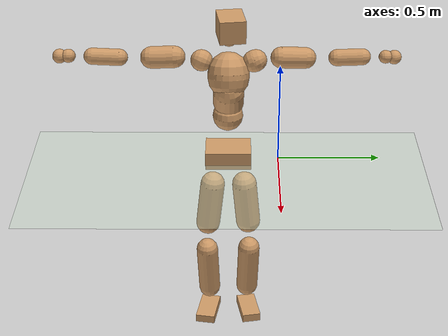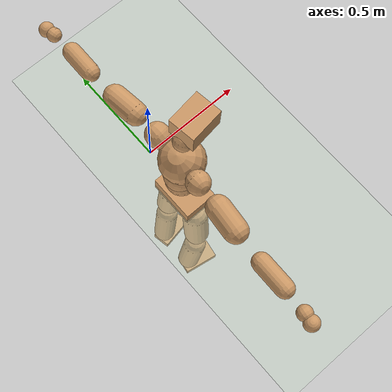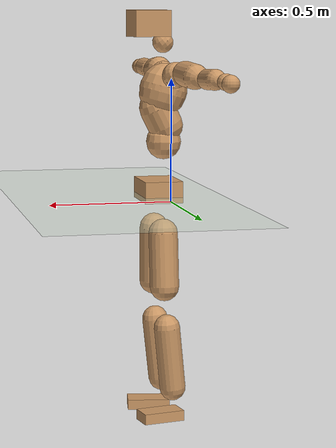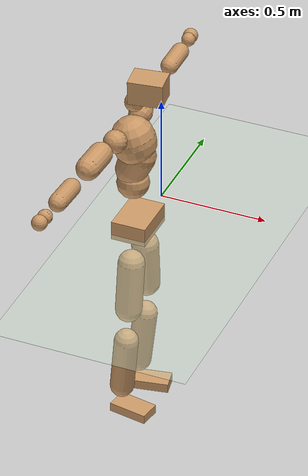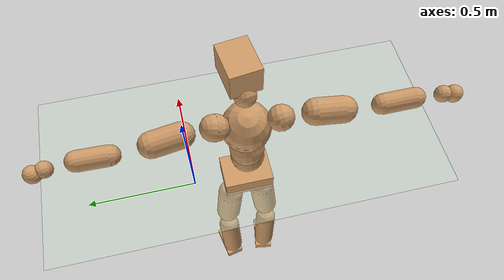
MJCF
<mujoco model="humanoid">
  <compiler coordinate="local" angle="radian"/>
  <default>
    <joint damping="0.0" armature="0.01" stiffness="0.0" limited="true"/>
    <geom conaffinity="1" condim="3" contype="7" margin="0.001" rgba="0.8 0.6 .4 1"/>
  </default>
  <asset>
    <texture type="skybox" builtin="gradient" rgb1=".4 .5 .6" rgb2="0 0 0" width="100" height="100"/>
    <texture builtin="flat" height="1278" mark="cross" markrgb="1 1 1" name="texgeom" random="0.01" rgb1="0.8 0.6 0.4" rgb2="0.8 0.6 0.4" type="cube" width="127"/>
    <texture builtin="checker" height="100" name="texplane" rgb1="0 0 0" rgb2="0.8 0.8 0.8" type="2d" width="100"/>
    <material name="MatPlane" reflectance="0.5" shininess="1" specular="1" texrepeat="60 60" texture="texplane"/>
    <material name="geom" texture="texgeom" texuniform="true"/>
  </asset>
  <worldbody>
    <light cutoff="100" diffuse="1 1 1" dir="-0 0 -1.3" directional="true" exponent="1" pos="0 0 1.3" specular=".1 .1 .1"/>
    <geom conaffinity="1" condim="3" name="floor" pos="0 0 0" rgba="0.8 0.9 0.8 1" size="100 100 .2" type="plane" material="MatPlane"/>
    <body name="Pelvis" pos="0.0011 -0.2469 0.0328">
      <freejoint name="Pelvis"/>
      <geom type="box" contype="1" conaffinity="1" density="5359.374946" pos="-0.0064 0.0000 -0.0133" size="0.0804 0.1121 0.0449" quat="1.0000 0.0000 0.0000 -0.0000" name="Pelvis"/>
      <body name="L_Hip" pos="-0.008 0.073 -0.0976">
        <joint name="L_Hip_x" type="hinge" pos="0 0 0" axis="1 0 0" stiffness="1600" damping="160" armature="0.02" range="-180.0000 180.0000"/>
        <joint name="L_Hip_y" type="hinge" pos="0 0 0" axis="0 1 0" stiffness="1600" damping="160" armature="0.02" range="-180.0000 180.0000"/>
        <joint name="L_Hip_z" type="hinge" pos="0 0 0" axis="0 0 1" stiffness="1600" damping="160" armature="0.02" range="-180.0000 180.0000"/>
        <geom type="capsule" contype="1" conaffinity="1" density="2040.816327" size="0.0618" fromto="-0.0008 0.0086 -0.0914 -0.0026 0.0298 -0.3160" name="L_Hip"/>
        <body name="L_Knee" pos="-0.0034 0.0385 -0.4075">
          <joint name="L_Knee_x" type="hinge" pos="0 0 0" axis="1 0 0" stiffness="1600" damping="160" armature="0.02" range="-180.0000 180.0000"/>
          <joint name="L_Knee_y" type="hinge" pos="0 0 0" axis="0 1 0" stiffness="1600" damping="160" armature="0.02" range="-180.0000 180.0000"/>
          <joint name="L_Knee_z" type="hinge" pos="0 0 0" axis="0 0 1" stiffness="1600" damping="160" armature="0.02" range="-180.0000 180.0000"/>
          <geom type="capsule" contype="1" conaffinity="1" density="1234.567901" size="0.0556" fromto="-0.0089 -0.0027 -0.0850 -0.0368 -0.0110 -0.3498" name="L_Knee"/>
          <body name="L_Ankle" pos="-0.0457 -0.0137 -0.4348">
            <joint name="L_Ankle_x" type="hinge" pos="0 0 0" axis="1 0 0" stiffness="1600" damping="160" armature="0.02" range="-180.0000 180.0000"/>
            <joint name="L_Ankle_y" type="hinge" pos="0 0 0" axis="0 1 0" stiffness="1600" damping="160" armature="0.02" range="-180.0000 180.0000"/>
            <joint name="L_Ankle_z" type="hinge" pos="0 0 0" axis="0 0 1" stiffness="1600" damping="160" armature="0.02" range="-180.0000 180.0000"/>
            <geom type="box" contype="1" conaffinity="1" density="999.999994" pos="0.0640 0.0118 -0.0311" size="0.0896 0.0475 0.0222" quat="0.9958 0.0000 0.0000 0.0910" name="L_Ankle"/>
            <body name="L_Toe" pos="0.128 0.0236 -0.0621">
              <joint name="L_Toe_x" type="hinge" pos="0 0 0" axis="1 0 0" stiffness="1000" damping="100" armature="0.02" range="-180.0000 180.0000"/>
              <joint name="L_Toe_y" type="hinge" pos="0 0 0" axis="0 1 0" stiffness="1000" damping="100" armature="0.02" range="-180.0000 180.0000"/>
              <joint name="L_Toe_z" type="hinge" pos="0 0 0" axis="0 0 1" stiffness="1000" damping="100" armature="0.02" range="-180.0000 180.0000"/>
              <geom type="box" contype="1" conaffinity="1" density="8800089.285752" pos="0.0000 0.0000 0.0316" size="0.0009 0.0024 0.0011" quat="0.9953 0.0000 0.0000 0.0970" name="L_Toe"/>
            </body>
          </body>
        </body>
      </body>
      <body name="R_Hip" pos="-0.0043 -0.0689 -0.0963">
        <joint name="R_Hip_x" type="hinge" pos="0 0 0" axis="1 0 0" stiffness="1600" damping="160" armature="0.02" range="-180.0000 180.0000"/>
        <joint name="R_Hip_y" type="hinge" pos="0 0 0" axis="0 1 0" stiffness="1600" damping="160" armature="0.02" range="-180.0000 180.0000"/>
        <joint name="R_Hip_z" type="hinge" pos="0 0 0" axis="0 0 1" stiffness="1600" damping="160" armature="0.02" range="-180.0000 180.0000"/>
        <geom type="capsule" contype="1" conaffinity="1" density="2040.816327" size="0.0609" fromto="-0.0013 -0.0097 -0.0903 -0.0049 -0.0350 -0.3268" name="R_Hip"/>
        <body name="R_Knee" pos="-0.0062 -0.0447 -0.4172">
          <joint name="R_Knee_x" type="hinge" pos="0 0 0" axis="1 0 0" stiffness="1600" damping="160" armature="0.02" range="-180.0000 180.0000"/>
          <joint name="R_Knee_y" type="hinge" pos="0 0 0" axis="0 1 0" stiffness="1600" damping="160" armature="0.02" range="-180.0000 180.0000"/>
          <joint name="R_Knee_z" type="hinge" pos="0 0 0" axis="0 0 1" stiffness="1600" damping="160" armature="0.02" range="-180.0000 180.0000"/>
          <geom type="capsule" contype="1" conaffinity="1" density="1234.567901" size="0.056" fromto="-0.0087 0.0033 -0.0855 -0.0355 0.0137 -0.3500" name="R_Knee"/>
          <body name="R_Ankle" pos="-0.0442 0.017 -0.4355">
            <joint name="R_Ankle_x" type="hinge" pos="0 0 0" axis="1 0 0" stiffness="1600" damping="160" armature="0.02" range="-180.0000 180.0000"/>
            <joint name="R_Ankle_y" type="hinge" pos="0 0 0" axis="0 1 0" stiffness="1600" damping="160" armature="0.02" range="-180.0000 180.0000"/>
            <joint name="R_Ankle_z" type="hinge" pos="0 0 0" axis="0 0 1" stiffness="1600" damping="160" armature="0.02" range="-180.0000 180.0000"/>
            <geom type="box" contype="1" conaffinity="1" density="1000.000014" pos="0.0658 -0.0112 -0.0257" size="0.0915 0.0496 0.0215" quat="0.9964 0.0000 0.0000 -0.0844" name="R_Ankle"/>
            <body name="R_Toe" pos="0.1317 -0.0225 -0.0514">
              <joint name="R_Toe_x" type="hinge" pos="0 0 0" axis="1 0 0" stiffness="1000" damping="100" armature="0.02" range="-180.0000 180.0000"/>
              <joint name="R_Toe_y" type="hinge" pos="0 0 0" axis="0 1 0" stiffness="1000" damping="100" armature="0.02" range="-180.0000 180.0000"/>
              <joint name="R_Toe_z" type="hinge" pos="0 0 0" axis="0 0 1" stiffness="1000" damping="100" armature="0.02" range="-180.0000 180.0000"/>
              <geom type="box" contype="1" conaffinity="1" density="8518494.071621" pos="0.0000 0.0000 0.0296" size="0.0009 0.0024 0.0013" quat="0.9971 0.0000 0.0000 -0.0759" name="R_Toe"/>
            </body>
          </body>
        </body>
      </body>
      <body name="Torso" pos="-0.0263 -0.0041 0.1143">
        <joint name="Torso_x" type="hinge" pos="0 0 0" axis="1 0 0" stiffness="2000" damping="200" armature="0.02" range="-180.0000 180.0000"/>
        <joint name="Torso_y" type="hinge" pos="0 0 0" axis="0 1 0" stiffness="2000" damping="200" armature="0.02" range="-180.0000 180.0000"/>
        <joint name="Torso_z" type="hinge" pos="0 0 0" axis="0 0 1" stiffness="2000" damping="200" armature="0.02" range="-180.0000 180.0000"/>
        <geom type="capsule" contype="1" conaffinity="1" density="2040.816327" size="0.0743" fromto="-0.0023 0.0025 0.0759 -0.0023 0.0025 0.0779" name="Torso"/>
        <body name="Spine" pos="-0.0046 0.005 0.1538">
          <joint name="Spine_x" type="hinge" pos="0 0 0" axis="1 0 0" stiffness="2000" damping="200" armature="0.02" range="-180.0000 180.0000"/>
          <joint name="Spine_y" type="hinge" pos="0 0 0" axis="0 1 0" stiffness="2000" damping="200" armature="0.02" range="-180.0000 180.0000"/>
          <joint name="Spine_z" type="hinge" pos="0 0 0" axis="0 0 1" stiffness="2000" damping="200" armature="0.02" range="-180.0000 180.0000"/>
          <geom type="capsule" contype="1" conaffinity="1" density="2040.816327" size="0.0745" fromto="0.0331 0.0014 0.0667 -0.0046 -0.0002 -0.0093" name="Spine"/>
          <body name="Chest" pos="0.0285 0.0012 0.0574">
            <joint name="Chest_x" type="hinge" pos="0 0 0" axis="1 0 0" stiffness="2000" damping="200" armature="0.02" range="-180.0000 180.0000"/>
            <joint name="Chest_y" type="hinge" pos="0 0 0" axis="0 1 0" stiffness="2000" damping="200" armature="0.02" range="-180.0000 180.0000"/>
            <joint name="Chest_z" type="hinge" pos="0 0 0" axis="0 0 1" stiffness="2000" damping="200" armature="0.02" range="-180.0000 180.0000"/>
            <geom type="capsule" contype="1" conaffinity="1" density="2040.816327" size="0.1003" fromto="-0.0274 -0.0006 0.0965 -0.0203 -0.0005 0.0716" name="Chest"/>
            <body name="Neck" pos="-0.051 -0.0014 0.2436">
              <joint name="Neck_x" type="hinge" pos="0 0 0" axis="1 0 0" stiffness="1000" damping="100" armature="0.02" range="-180.0000 180.0000"/>
              <joint name="Neck_y" type="hinge" pos="0 0 0" axis="0 1 0" stiffness="1000" damping="100" armature="0.02" range="-180.0000 180.0000"/>
              <joint name="Neck_z" type="hinge" pos="0 0 0" axis="0 0 1" stiffness="1000" damping="100" armature="0.02" range="-180.0000 180.0000"/>
              <geom type="capsule" contype="1" conaffinity="1" density="1000" size="0.0438" fromto="0.0300 0.0033 0.0380 0.0313 0.0034 0.0396" name="Neck"/>
              <body name="Head" pos="0.0613 0.0068 0.0776">
                <joint name="Head_x" type="hinge" pos="0 0 0" axis="1 0 0" stiffness="1000" damping="100" armature="0.02" range="-180.0000 180.0000"/>
                <joint name="Head_y" type="hinge" pos="0 0 0" axis="0 1 0" stiffness="1000" damping="100" armature="0.02" range="-180.0000 180.0000"/>
                <joint name="Head_z" type="hinge" pos="0 0 0" axis="0 0 1" stiffness="1000" damping="100" armature="0.02" range="-180.0000 180.0000"/>
                <geom type="box" contype="1" conaffinity="1" density="2250.00025" pos="0.0317 0.0044 0.0398" size="0.0788 0.0611 0.0549" quat="0.9976 0.0000 0.0000 0.0686" name="Head"/>
              </body>
            </body>
            <body name="L_Thorax" pos="-0.0422 0.0799 0.1323">
              <joint name="L_Thorax_x" type="hinge" pos="0 0 0" axis="1 0 0" stiffness="1000" damping="100" armature="0.02" range="-180.0000 180.0000"/>
              <joint name="L_Thorax_y" type="hinge" pos="0 0 0" axis="0 1 0" stiffness="1000" damping="100" armature="0.02" range="-180.0000 180.0000"/>
              <joint name="L_Thorax_z" type="hinge" pos="0 0 0" axis="0 0 1" stiffness="1000" damping="100" armature="0.02" range="-180.0000 180.0000"/>
              <geom type="capsule" contype="1" conaffinity="1" density="1000" size="0.0536" fromto="-0.0024 0.0498 0.0196 -0.0019 0.0403 0.0159" name="L_Thorax"/>
              <body name="L_Shoulder" pos="-0.0043 0.0901 0.0355">
                <joint name="L_Shoulder_x" type="hinge" pos="0 0 0" axis="1 0 0" stiffness="1000" damping="100" armature="0.02" range="-720.0000 720.0000"/>
                <joint name="L_Shoulder_y" type="hinge" pos="0 0 0" axis="0 1 0" stiffness="1000" damping="100" armature="0.02" range="-720.0000 720.0000"/>
                <joint name="L_Shoulder_z" type="hinge" pos="0 0 0" axis="0 0 1" stiffness="1000" damping="100" armature="0.02" range="-720.0000 720.0000"/>
                <geom type="capsule" contype="1" conaffinity="1" density="1000" size="0.0515" fromto="-0.0084 0.0809 -0.0051 -0.0205 0.1965 -0.0124" name="L_Shoulder"/>
                <body name="L_Elbow" pos="-0.0289 0.2775 -0.0175">
                  <joint name="L_Elbow_x" type="hinge" pos="0 0 0" axis="1 0 0" stiffness="1000" damping="100" armature="0.02" range="-720.0000 720.0000"/>
                  <joint name="L_Elbow_y" type="hinge" pos="0 0 0" axis="0 1 0" stiffness="1000" damping="100" armature="0.02" range="-720.0000 720.0000"/>
                  <joint name="L_Elbow_z" type="hinge" pos="0 0 0" axis="0 0 1" stiffness="1000" damping="100" armature="0.02" range="-720.0000 720.0000"/>
                  <geom type="capsule" contype="1" conaffinity="1" density="1000" size="0.0403" fromto="0.0001 0.0702 0.0028 0.0004 0.1917 0.0075" name="L_Elbow"/>
                  <body name="L_Wrist" pos="0.0005 0.2619 0.0103">
                    <joint name="L_Wrist_x" type="hinge" pos="0 0 0" axis="1 0 0" stiffness="600" damping="60" armature="0.02" range="-180.0000 180.0000"/>
                    <joint name="L_Wrist_y" type="hinge" pos="0 0 0" axis="0 1 0" stiffness="600" damping="60" armature="0.02" range="-180.0000 180.0000"/>
                    <joint name="L_Wrist_z" type="hinge" pos="0 0 0" axis="0 0 1" stiffness="600" damping="60" armature="0.02" range="-180.0000 180.0000"/>
                    <geom type="capsule" contype="1" conaffinity="1" density="1000" size="0.032" fromto="-0.0069 0.0416 -0.0051 -0.0072 0.0435 -0.0053" name="L_Wrist"/>
                    <body name="L_Hand" pos="-0.0142 0.0851 -0.0104">
                      <joint name="L_Hand_x" type="hinge" pos="0 0 0" axis="1 0 0" stiffness="600" damping="60" armature="0.02" range="-180.0000 180.0000"/>
                      <joint name="L_Hand_y" type="hinge" pos="0 0 0" axis="0 1 0" stiffness="600" damping="60" armature="0.02" range="-180.0000 180.0000"/>
                      <joint name="L_Hand_z" type="hinge" pos="0 0 0" axis="0 0 1" stiffness="600" damping="60" armature="0.02" range="-180.0000 180.0000"/>
                      <geom type="sphere" contype="1" conaffinity="1" density="1000" size="0.0342" pos="0.0000 0.0000 0.0000" name="L_Hand"/>
                    </body>
                  </body>
                </body>
              </body>
            </body>
            <body name="R_Thorax" pos="-0.0497 -0.0818 0.1284">
              <joint name="R_Thorax_x" type="hinge" pos="0 0 0" axis="1 0 0" stiffness="1000" damping="100" armature="0.02" range="-180.0000 180.0000"/>
              <joint name="R_Thorax_y" type="hinge" pos="0 0 0" axis="0 1 0" stiffness="1000" damping="100" armature="0.02" range="-180.0000 180.0000"/>
              <joint name="R_Thorax_z" type="hinge" pos="0 0 0" axis="0 0 1" stiffness="1000" damping="100" armature="0.02" range="-180.0000 180.0000"/>
              <geom type="capsule" contype="1" conaffinity="1" density="1000" size="0.0527" fromto="-0.0045 -0.0489 0.0191 -0.0043 -0.0469 0.0183" name="R_Thorax"/>
              <body name="R_Shoulder" pos="-0.0088 -0.0958 0.0373">
                <joint name="R_Shoulder_x" type="hinge" pos="0 0 0" axis="1 0 0" stiffness="1000" damping="100" armature="0.02" range="-720.0000 720.0000"/>
                <joint name="R_Shoulder_y" type="hinge" pos="0 0 0" axis="0 1 0" stiffness="1000" damping="100" armature="0.02" range="-720.0000 720.0000"/>
                <joint name="R_Shoulder_z" type="hinge" pos="0 0 0" axis="0 0 1" stiffness="1000" damping="100" armature="0.02" range="-720.0000 720.0000"/>
                <geom type="capsule" contype="1" conaffinity="1" density="1000" size="0.0534" fromto="-0.0069 -0.0830 -0.0058 -0.0160 -0.1935 -0.0136" name="R_Shoulder"/>
                <body name="R_Elbow" pos="-0.0229 -0.2765 -0.0195">
                  <joint name="R_Elbow_x" type="hinge" pos="0 0 0" axis="1 0 0" stiffness="1000" damping="100" armature="0.02" range="-720.0000 720.0000"/>
                  <joint name="R_Elbow_y" type="hinge" pos="0 0 0" axis="0 1 0" stiffness="1000" damping="100" armature="0.02" range="-720.0000 720.0000"/>
                  <joint name="R_Elbow_z" type="hinge" pos="0 0 0" axis="0 0 1" stiffness="1000" damping="100" armature="0.02" range="-720.0000 720.0000"/>
                  <geom type="capsule" contype="1" conaffinity="1" density="1000" size="0.0407" fromto="-0.0013 -0.0707 0.0023 -0.0038 -0.2023 0.0067" name="R_Elbow"/>
                  <body name="R_Wrist" pos="-0.0051 -0.273 0.009">
                    <joint name="R_Wrist_x" type="hinge" pos="0 0 0" axis="1 0 0" stiffness="600" damping="60" armature="0.02" range="-180.0000 180.0000"/>
                    <joint name="R_Wrist_y" type="hinge" pos="0 0 0" axis="0 1 0" stiffness="600" damping="60" armature="0.02" range="-180.0000 180.0000"/>
                    <joint name="R_Wrist_z" type="hinge" pos="0 0 0" axis="0 0 1" stiffness="600" damping="60" armature="0.02" range="-180.0000 180.0000"/>
                    <geom type="capsule" contype="1" conaffinity="1" density="1000" size="0.0331" fromto="-0.0054 -0.0427 -0.0038 -0.0057 -0.0446 -0.0039" name="R_Wrist"/>
                    <body name="R_Hand" pos="-0.0111 -0.0873 -0.0077">
                      <joint name="R_Hand_x" type="hinge" pos="0 0 0" axis="1 0 0" stiffness="600" damping="60" armature="0.02" range="-180.0000 180.0000"/>
                      <joint name="R_Hand_y" type="hinge" pos="0 0 0" axis="0 1 0" stiffness="600" damping="60" armature="0.02" range="-180.0000 180.0000"/>
                      <joint name="R_Hand_z" type="hinge" pos="0 0 0" axis="0 0 1" stiffness="600" damping="60" armature="0.02" range="-180.0000 180.0000"/>
                      <geom type="sphere" contype="1" conaffinity="1" density="1000" size="0.0349" pos="0.0000 0.0000 0.0000" name="R_Hand"/>
                    </body>
                  </body>
                </body>
              </body>
            </body>
          </body>
        </body>
      </body>
    </body>
  </worldbody>
  <actuator>
    <motor name="L_Hip_x" joint="L_Hip_x" gear="500"/>
    <motor name="L_Hip_y" joint="L_Hip_y" gear="500"/>
    <motor name="L_Hip_z" joint="L_Hip_z" gear="500"/>
    <motor name="L_Knee_x" joint="L_Knee_x" gear="500"/>
    <motor name="L_Knee_y" joint="L_Knee_y" gear="500"/>
    <motor name="L_Knee_z" joint="L_Knee_z" gear="500"/>
    <motor name="L_Ankle_x" joint="L_Ankle_x" gear="500"/>
    <motor name="L_Ankle_y" joint="L_Ankle_y" gear="500"/>
    <motor name="L_Ankle_z" joint="L_Ankle_z" gear="500"/>
    <motor name="L_Toe_x" joint="L_Toe_x" gear="500"/>
    <motor name="L_Toe_y" joint="L_Toe_y" gear="500"/>
    <motor name="L_Toe_z" joint="L_Toe_z" gear="500"/>
    <motor name="R_Hip_x" joint="R_Hip_x" gear="500"/>
    <motor name="R_Hip_y" joint="R_Hip_y" gear="500"/>
    <motor name="R_Hip_z" joint="R_Hip_z" gear="500"/>
    <motor name="R_Knee_x" joint="R_Knee_x" gear="500"/>
    <motor name="R_Knee_y" joint="R_Knee_y" gear="500"/>
    <motor name="R_Knee_z" joint="R_Knee_z" gear="500"/>
    <motor name="R_Ankle_x" joint="R_Ankle_x" gear="500"/>
    <motor name="R_Ankle_y" joint="R_Ankle_y" gear="500"/>
    <motor name="R_Ankle_z" joint="R_Ankle_z" gear="500"/>
    <motor name="R_Toe_x" joint="R_Toe_x" gear="500"/>
    <motor name="R_Toe_y" joint="R_Toe_y" gear="500"/>
    <motor name="R_Toe_z" joint="R_Toe_z" gear="500"/>
    <motor name="Torso_x" joint="Torso_x" gear="500"/>
    <motor name="Torso_y" joint="Torso_y" gear="500"/>
    <motor name="Torso_z" joint="Torso_z" gear="500"/>
    <motor name="Spine_x" joint="Spine_x" gear="500"/>
    <motor name="Spine_y" joint="Spine_y" gear="500"/>
    <motor name="Spine_z" joint="Spine_z" gear="500"/>
    <motor name="Chest_x" joint="Chest_x" gear="500"/>
    <motor name="Chest_y" joint="Chest_y" gear="500"/>
    <motor name="Chest_z" joint="Chest_z" gear="500"/>
    <motor name="Neck_x" joint="Neck_x" gear="500"/>
    <motor name="Neck_y" joint="Neck_y" gear="500"/>
    <motor name="Neck_z" joint="Neck_z" gear="500"/>
    <motor name="Head_x" joint="Head_x" gear="500"/>
    <motor name="Head_y" joint="Head_y" gear="500"/>
    <motor name="Head_z" joint="Head_z" gear="500"/>
    <motor name="L_Thorax_x" joint="L_Thorax_x" gear="500"/>
    <motor name="L_Thorax_y" joint="L_Thorax_y" gear="500"/>
    <motor name="L_Thorax_z" joint="L_Thorax_z" gear="500"/>
    <motor name="L_Shoulder_x" joint="L_Shoulder_x" gear="500"/>
    <motor name="L_Shoulder_y" joint="L_Shoulder_y" gear="500"/>
    <motor name="L_Shoulder_z" joint="L_Shoulder_z" gear="500"/>
    <motor name="L_Elbow_x" joint="L_Elbow_x" gear="500"/>
    <motor name="L_Elbow_y" joint="L_Elbow_y" gear="500"/>
    <motor name="L_Elbow_z" joint="L_Elbow_z" gear="500"/>
    <motor name="L_Wrist_x" joint="L_Wrist_x" gear="500"/>
    <motor name="L_Wrist_y" joint="L_Wrist_y" gear="500"/>
    <motor name="L_Wrist_z" joint="L_Wrist_z" gear="500"/>
    <motor name="L_Hand_x" joint="L_Hand_x" gear="500"/>
    <motor name="L_Hand_y" joint="L_Hand_y" gear="500"/>
    <motor name="L_Hand_z" joint="L_Hand_z" gear="500"/>
    <motor name="R_Thorax_x" joint="R_Thorax_x" gear="500"/>
    <motor name="R_Thorax_y" joint="R_Thorax_y" gear="500"/>
    <motor name="R_Thorax_z" joint="R_Thorax_z" gear="500"/>
    <motor name="R_Shoulder_x" joint="R_Shoulder_x" gear="500"/>
    <motor name="R_Shoulder_y" joint="R_Shoulder_y" gear="500"/>
    <motor name="R_Shoulder_z" joint="R_Shoulder_z" gear="500"/>
    <motor name="R_Elbow_x" joint="R_Elbow_x" gear="500"/>
    <motor name="R_Elbow_y" joint="R_Elbow_y" gear="500"/>
    <motor name="R_Elbow_z" joint="R_Elbow_z" gear="500"/>
    <motor name="R_Wrist_x" joint="R_Wrist_x" gear="500"/>
    <motor name="R_Wrist_y" joint="R_Wrist_y" gear="500"/>
    <motor name="R_Wrist_z" joint="R_Wrist_z" gear="500"/>
    <motor name="R_Hand_x" joint="R_Hand_x" gear="500"/>
    <motor name="R_Hand_y" joint="R_Hand_y" gear="500"/>
    <motor name="R_Hand_z" joint="R_Hand_z" gear="500"/>
  </actuator>
  <contact>
    <exclude body1="Torso" body2="Chest"/>
    <exclude body1="Head" body2="Chest"/>
    <exclude body1="R_Knee" body2="R_Toe"/>
    <exclude body1="R_Knee" body2="L_Ankle"/>
    <exclude body1="R_Knee" body2="L_Toe"/>
    <exclude body1="L_Knee" body2="L_Toe"/>
    <exclude body1="L_Knee" body2="R_Ankle"/>
    <exclude body1="L_Knee" body2="R_Toe"/>
    <exclude body1="L_Shoulder" body2="Chest"/>
    <exclude body1="R_Shoulder" body2="Chest"/>
  </contact>
  <sensor/>
  <size njmax="700" nconmax="700"/>
</mujoco>
